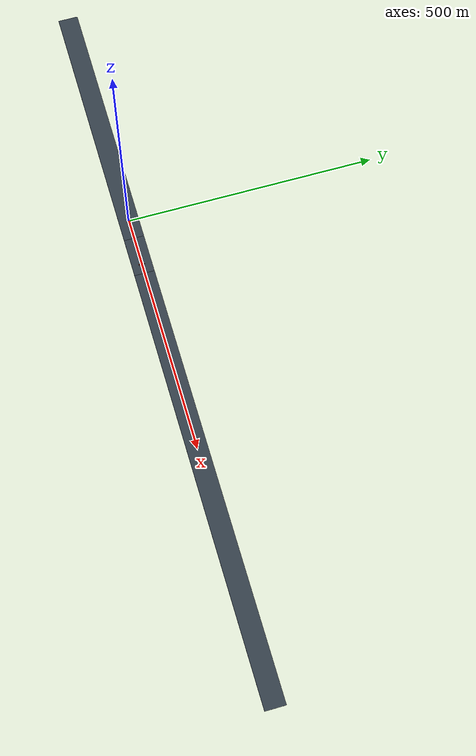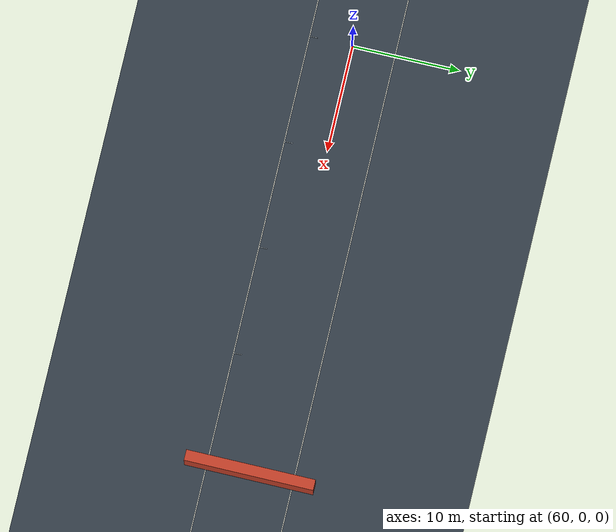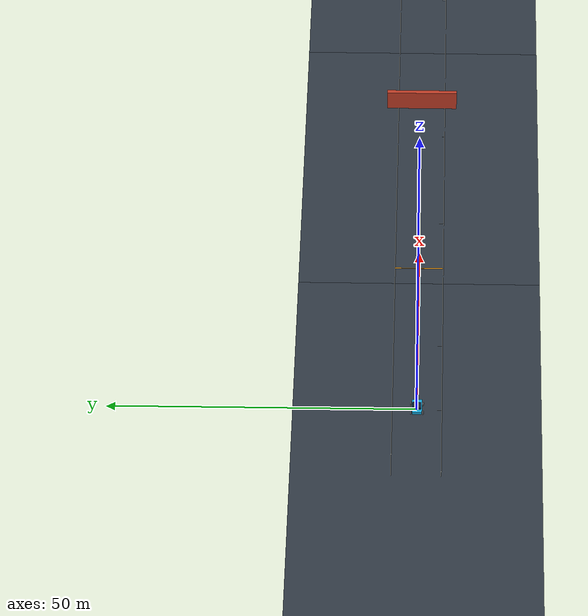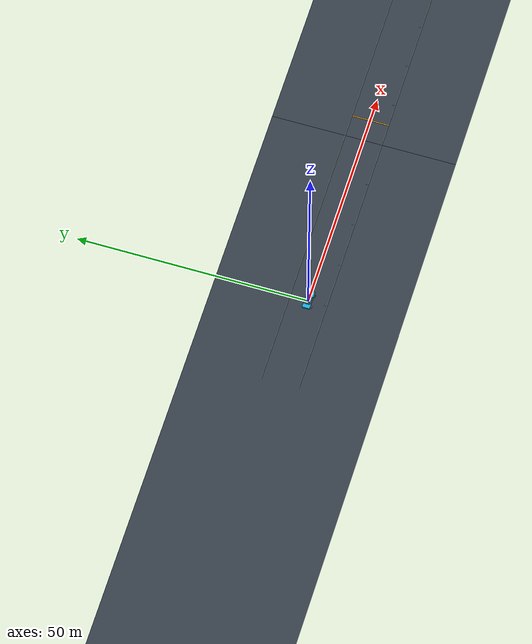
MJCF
<mujoco model="RealityPatch car and wall">
  <compiler angle="degree" />
  <option timestep="0.002" integrator="implicit" cone="elliptic" impratio="10" iterations="80" tolerance="1e-9" />
  <default>
    <geom friction="1.1 0.005 0.0001" condim="3" solref="0.01 1" solimp="0.95 0.99 0.001" />
  </default>
  <visual>
    <global offwidth="1280" offheight="720" />
    <map znear="0.05" zfar="500" />
    <headlight ambient="0.4 0.4 0.4" diffuse="0.7 0.7 0.7" />
  </visual>
  <statistic center="50 0 0" extent="60" />
  <asset>
    <texture name="sky" type="skybox" builtin="gradient" rgb1="0.12 0.22 0.35" rgb2="0.7 0.8 0.9" width="256" height="1536" />
    <material name="paint" rgba="0.08 0.65 0.85 1" specular="0.5" shininess="0.5" />
    <material name="glass" rgba="0.08 0.14 0.22 1" specular="0.7" />
    <material name="rubber" rgba="0.045 0.05 0.065 1" />
  </asset>
  <worldbody>
    <light pos="50 -10 30" dir="0 0 -1" directional="true" />
    <camera name="overview" pos="52 -90 75" xyaxes="1 0 0 0 0.64 0.77" fovy="60" />
    <camera name="side" pos="70 -55 18" xyaxes="1 0 0 0 0.3 0.954" fovy="65" />
    <geom name="road_before" type="box" pos="-230.0 0 -0.1" size="270.0 20 0.1" priority="1" rgba="0.19 0.23 0.27 1" />
    <geom name="road_patch" type="box" pos="80.0 0 -0.1" size="40.0 20 0.1" priority="1" rgba="0.19 0.23 0.27 1" friction="1.1 0.005 0.0001" />
    <geom name="road_after" type="box" pos="560.0 0 -0.1" size="440.0 20 0.1" priority="1" rgba="0.19 0.23 0.27 1" />
    <geom name="left_line" type="box" pos="70 4 0.005" size="90 0.04 0.005" rgba="0.9 0.9 0.85 1" contype="0" conaffinity="0" />
    <geom name="right_line" type="box" pos="70 -4 0.005" size="90 0.04 0.005" rgba="0.9 0.9 0.85 1" contype="0" conaffinity="0" />
    <geom name="brake_line" type="box" pos="45.0 0 0.008" size="0.12 4 0.005" rgba="1 0.65 0.1 1" contype="0" conaffinity="0" />
  <geom type="box" pos="0 -3.6 0.006" size="0.035 0.35 0.005" rgba="0.65 0.7 0.74 1" contype="0" conaffinity="0" /><geom type="box" pos="10 -3.6 0.006" size="0.035 0.35 0.005" rgba="0.65 0.7 0.74 1" contype="0" conaffinity="0" /><geom type="box" pos="20 -3.6 0.006" size="0.035 0.35 0.005" rgba="0.65 0.7 0.74 1" contype="0" conaffinity="0" /><geom type="box" pos="30 -3.6 0.006" size="0.035 0.35 0.005" rgba="0.65 0.7 0.74 1" contype="0" conaffinity="0" /><geom type="box" pos="40 -3.6 0.006" size="0.035 0.35 0.005" rgba="0.65 0.7 0.74 1" contype="0" conaffinity="0" /><geom type="box" pos="50 -3.6 0.006" size="0.035 0.35 0.005" rgba="0.65 0.7 0.74 1" contype="0" conaffinity="0" /><geom type="box" pos="60 -3.6 0.006" size="0.035 0.35 0.005" rgba="0.65 0.7 0.74 1" contype="0" conaffinity="0" /><geom type="box" pos="70 -3.6 0.006" size="0.035 0.35 0.005" rgba="0.65 0.7 0.74 1" contype="0" conaffinity="0" /><geom type="box" pos="80 -3.6 0.006" size="0.035 0.35 0.005" rgba="0.65 0.7 0.74 1" contype="0" conaffinity="0" /><geom type="box" pos="90 -3.6 0.006" size="0.035 0.35 0.005" rgba="0.65 0.7 0.74 1" contype="0" conaffinity="0" /><geom type="box" pos="100 -3.6 0.006" size="0.035 0.35 0.005" rgba="0.65 0.7 0.74 1" contype="0" conaffinity="0" /><geom type="box" pos="110 -3.6 0.006" size="0.035 0.35 0.005" rgba="0.65 0.7 0.74 1" contype="0" conaffinity="0" /><geom type="box" pos="120 -3.6 0.006" size="0.035 0.35 0.005" rgba="0.65 0.7 0.74 1" contype="0" conaffinity="0" /><geom type="box" pos="130 -3.6 0.006" size="0.035 0.35 0.005" rgba="0.65 0.7 0.74 1" contype="0" conaffinity="0" /><geom type="box" pos="140 -3.6 0.006" size="0.035 0.35 0.005" rgba="0.65 0.7 0.74 1" contype="0" conaffinity="0" /><geom type="box" pos="150 -3.6 0.006" size="0.035 0.35 0.005" rgba="0.65 0.7 0.74 1" contype="0" conaffinity="0" /><geom type="box" pos="160 -3.6 0.006" size="0.035 0.35 0.005" rgba="0.65 0.7 0.74 1" contype="0" conaffinity="0" /></worldbody>
  <worldbody>
    <body name="chassis" pos="0 0 0.58">
      <freejoint name="chassis_free" />
      <inertial pos="0 0 0" mass="1100" diaginertia="250 1500 1700" />
      <geom name="chassis_geom" type="box" size="2 0.8 0.18" material="paint" />
      <geom type="box" pos="-0.25 0 0.32" size="0.85 0.67 0.2" material="glass" contype="0" conaffinity="0" mass="0" />
      <geom type="box" pos="1.95 0.5 0.02" size="0.06 0.18 0.06" rgba="1 0.95 0.65 1" contype="0" conaffinity="0" mass="0" />
      <geom type="box" pos="1.95 -0.5 0.02" size="0.06 0.18 0.06" rgba="1 0.95 0.65 1" contype="0" conaffinity="0" mass="0" />
      <site name="front_bumper" pos="2 0 0" size="0.01" rgba="0 0 0 0" />
      <camera name="chase" mode="trackcom" pos="-8 -10 6" xyaxes="0.8 -0.6 0 0.25 0.33 0.91" fovy="55" />
    </body>
    <body name="carrier_FL" pos="1.35 0.98 0.34">
      <freejoint name="carrier_FL_free" />
      <inertial pos="0 0 0" mass="3" diaginertia="0.02 0.02 0.02" />
      <body name="wheel_FL">
        <joint name="spin_FL" axis="0 1 0" damping="0.02" armature="0.1" />
        <geom name="tire_FL" type="ellipsoid" size="0.34 0.12 0.34" mass="22" material="rubber" />
        <geom type="box" size="0.24 0.125 0.025" rgba="0.8 0.85 0.9 1" mass="0" contype="0" conaffinity="0" />
      </body>
    </body>
    <body name="carrier_FR" pos="1.35 -0.98 0.34">
      <freejoint name="carrier_FR_free" />
      <inertial pos="0 0 0" mass="3" diaginertia="0.02 0.02 0.02" />
      <body name="wheel_FR">
        <joint name="spin_FR" axis="0 1 0" damping="0.02" armature="0.1" />
        <geom name="tire_FR" type="ellipsoid" size="0.34 0.12 0.34" mass="22" material="rubber" />
        <geom type="box" size="0.24 0.125 0.025" rgba="0.8 0.85 0.9 1" mass="0" contype="0" conaffinity="0" />
      </body>
    </body>
    <body name="carrier_RL" pos="-1.35 0.98 0.34">
      <freejoint name="carrier_RL_free" />
      <inertial pos="0 0 0" mass="3" diaginertia="0.02 0.02 0.02" />
      <body name="wheel_RL">
        <joint name="spin_RL" axis="0 1 0" damping="0.02" armature="0.1" />
        <geom name="tire_RL" type="ellipsoid" size="0.34 0.12 0.34" mass="22" material="rubber" />
        <geom type="box" size="0.24 0.125 0.025" rgba="0.8 0.85 0.9 1" mass="0" contype="0" conaffinity="0" />
      </body>
    </body>
    <body name="carrier_RR" pos="-1.35 -0.98 0.34">
      <freejoint name="carrier_RR_free" />
      <inertial pos="0 0 0" mass="3" diaginertia="0.02 0.02 0.02" />
      <body name="wheel_RR">
        <joint name="spin_RR" axis="0 1 0" damping="0.02" armature="0.1" />
        <geom name="tire_RR" type="ellipsoid" size="0.34 0.12 0.34" mass="22" material="rubber" />
        <geom type="box" size="0.24 0.125 0.025" rgba="0.8 0.85 0.9 1" mass="0" contype="0" conaffinity="0" />
      </body>
    </body>
  </worldbody>
  <equality>
    <weld name="attach_FL" body1="chassis" body2="carrier_FL" solref="0.008 1" />
    <weld name="attach_FR" body1="chassis" body2="carrier_FR" solref="0.008 1" />
    <weld name="attach_RL" body1="chassis" body2="carrier_RL" solref="0.008 1" />
    <weld name="attach_RR" body1="chassis" body2="carrier_RR" solref="0.008 1" />
  </equality>
  <actuator>
    <motor name="torque_FL" joint="spin_FL" ctrlrange="-1500 1500" />
    <motor name="torque_FR" joint="spin_FR" ctrlrange="-1500 1500" />
    <motor name="torque_RL" joint="spin_RL" ctrlrange="-1500 1500" />
    <motor name="torque_RR" joint="spin_RR" ctrlrange="-1500 1500" />
  </actuator>
<worldbody>
    <geom name="wall" type="box" pos="100.5 0 1.5" size="0.5 6 1.5" rgba="0.75 0.24 0.15 1" />
  </worldbody>
</mujoco>
